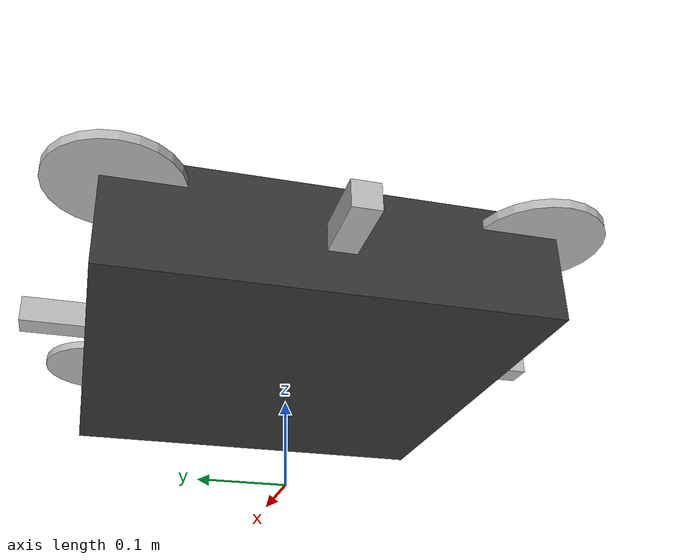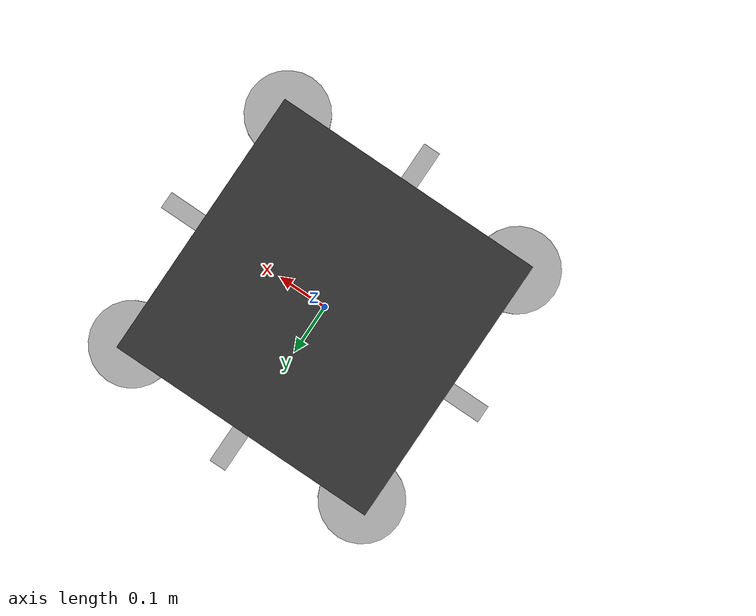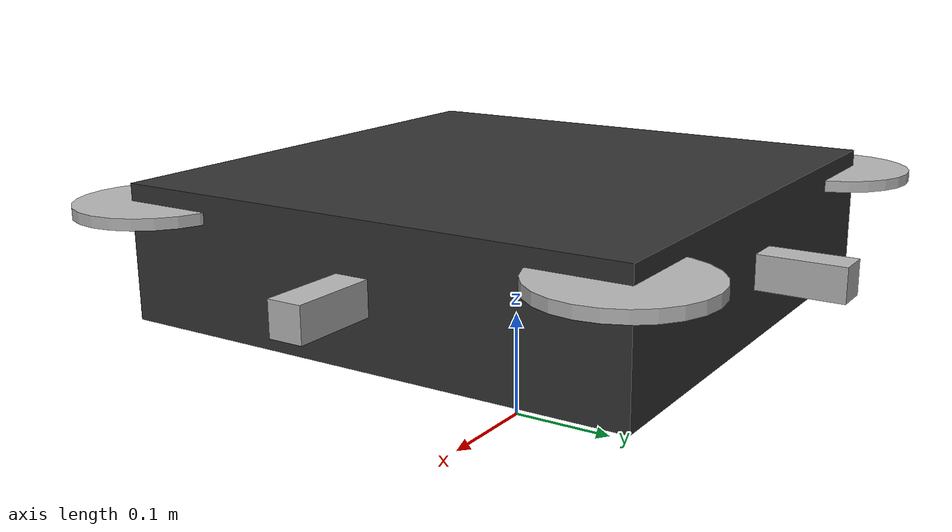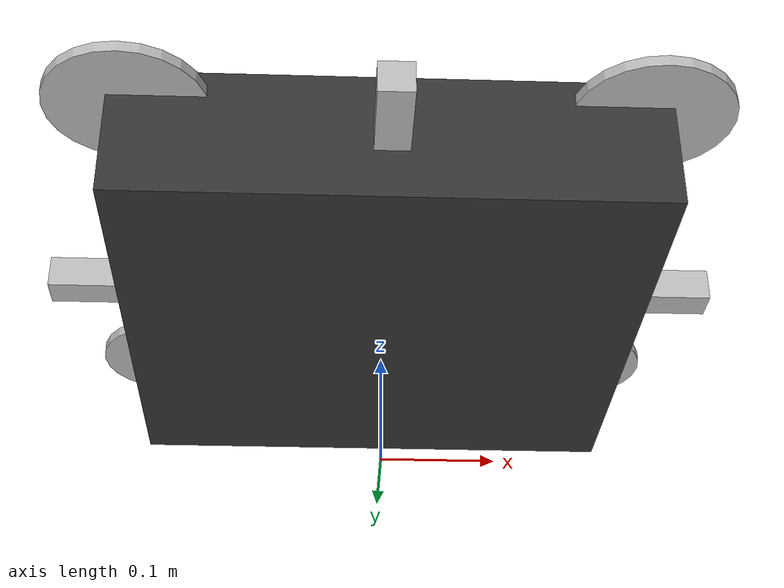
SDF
<?xml version="1.0"?>
<sdf version="1.9">
  <model name="iris_with_depth">
    <static>false</static>
    <pose>0 0 0.18 0 0 0</pose>

    <link name="base_link">
      <inertial>
        <mass>1.5</mass>
        <inertia>
          <ixx>0.029125</ixx>
          <iyy>0.029125</iyy>
          <izz>0.055225</izz>
          <ixy>0</ixy>
          <ixz>0</ixz>
          <iyz>0</iyz>
        </inertia>
      </inertial>

      <collision name="body_collision">
        <pose>0 0 0 0 0 0</pose>
        <geometry>
          <box>
            <size>0.47 0.47 0.12</size>
          </box>
        </geometry>
      </collision>

      <visual name="body_visual">
        <pose>0 0 0 0 0 0</pose>
        <geometry>
          <box>
            <size>0.47 0.47 0.12</size>
          </box>
        </geometry>
        <material>
          <ambient>0.1 0.1 0.1 1</ambient>
          <diffuse>0.2 0.2 0.2 1</diffuse>
        </material>
      </visual>

      <visual name="arm_x">
        <geometry>
          <box>
            <size>0.62 0.03 0.03</size>
          </box>
        </geometry>
      </visual>

      <visual name="arm_y">
        <geometry>
          <box>
            <size>0.03 0.62 0.03</size>
          </box>
        </geometry>
      </visual>

      <visual name="rotor_front_left">
        <pose>0.22 0.22 0.04 0 0 0</pose>
        <geometry>
          <cylinder>
            <radius>0.07</radius>
            <length>0.01</length>
          </cylinder>
        </geometry>
      </visual>
      <visual name="rotor_front_right">
        <pose>0.22 -0.22 0.04 0 0 0</pose>
        <geometry>
          <cylinder>
            <radius>0.07</radius>
            <length>0.01</length>
          </cylinder>
        </geometry>
      </visual>
      <visual name="rotor_rear_left">
        <pose>-0.22 0.22 0.04 0 0 0</pose>
        <geometry>
          <cylinder>
            <radius>0.07</radius>
            <length>0.01</length>
          </cylinder>
        </geometry>
      </visual>
      <visual name="rotor_rear_right">
        <pose>-0.22 -0.22 0.04 0 0 0</pose>
        <geometry>
          <cylinder>
            <radius>0.07</radius>
            <length>0.01</length>
          </cylinder>
        </geometry>
      </visual>

      <sensor name="front_depth" type="depth_camera">
        <pose>0.18 0 0.03 0 0 0</pose>
        <always_on>1</always_on>
        <update_rate>15</update_rate>
        <topic>/front_depth</topic>
        <visualize>true</visualize>
        <visualize>true</visualize>
        <camera>
          <horizontal_fov>1.047</horizontal_fov>
          <image>
            <width>640</width>
            <height>480</height>
            <format>R_FLOAT32</format>
          </image>
          <clip>
            <near>0.15</near>
            <far>20.0</far>
          </clip>
        </camera>
      </sensor>
    </link>
  </model>
</sdf>
